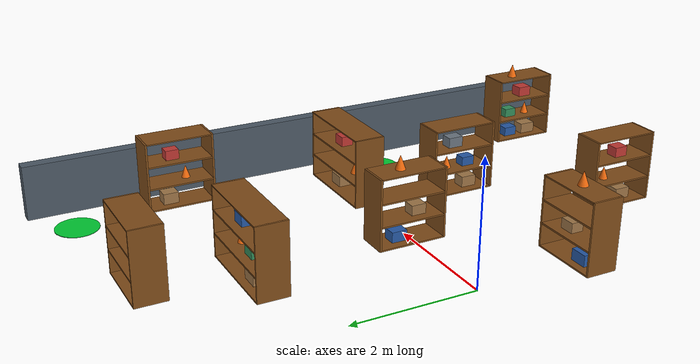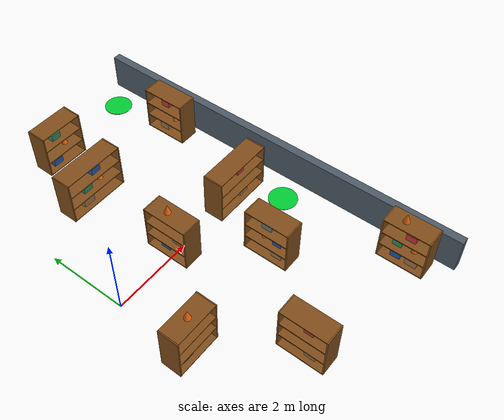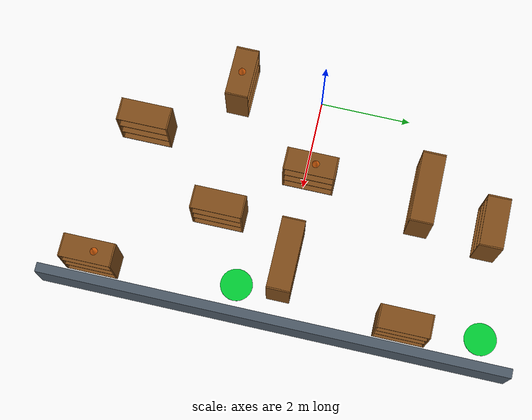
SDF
<sdf version="1.8">
 <world name="large_warehouse">
  <model name="ground_plane">
   <static>true</static>
   <link name="link">
    <collision name="collision">
     <geometry><plane><normal>0 0 1</normal><size>25 25</size></plane></geometry>
    </collision>
   </link>
  </model>
  <model name="wall_east">
   <static>true</static>
   <pose>5.1757 0.0 0.45 0 0 0</pose>
   <link name="link">
    <collision name="col"><geometry><box><size>0.2 10.0 0.9</size></box></geometry></collision>
    <visual name="vis">
     <geometry><box><size>0.2 10.0 0.9</size></box></geometry>
     <material><ambient>0.3 0.35 0.4 1</ambient><diffuse>0.3 0.35 0.4 1</diffuse></material>
    </visual>
   </link>
  </model>
  <model name="destination_marker_1">
   <static>true</static>
   <pose>4.4586 4.3795 0.01 0 0 0</pose>
   <link name="link">
    <visual name="visual">
     <geometry><cylinder><radius>0.35</radius><length>0.01</length></cylinder></geometry>
     <material><ambient>0.0 0.8 0.2 1</ambient><diffuse>0.0 0.8 0.2 1</diffuse></material>
    </visual>
   </link>
  </model>
  <model name="destination_marker_2">
   <static>true</static>
   <pose>4.4590 -0.9218 0.03 0 0 0</pose>
   <link name="link">
    <visual name="visual">
     <geometry><cylinder><radius>0.35</radius><length>0.01</length></cylinder></geometry>
     <material><ambient>0.0 0.8 0.2 1</ambient><diffuse>0.0 0.8 0.2 1</diffuse></material>
    </visual>
   </link>
  </model>
  <model name="shelf_2">
   <static>true</static>
   <pose>1.7745 2.6018 0.03 0 0 1.5697</pose>
   <link name="link">
    <collision name="col_left">
     <pose>0 0.765 0.575 0 0 0</pose>
     <geometry><box><size>0.50 0.032 1.15</size></box></geometry>
    </collision>
    <visual name="vis_left">
     <pose>0 0.765 0.575 0 0 0</pose>
     <geometry><box><size>0.50 0.032 1.15</size></box></geometry>
     <material><ambient>0.5 0.3 0.1 1</ambient><diffuse>0.5 0.3 0.1 1</diffuse></material>
    </visual>
    <collision name="col_right">
     <pose>0 -0.765 0.575 0 0 0</pose>
     <geometry><box><size>0.50 0.032 1.15</size></box></geometry>
    </collision>
    <visual name="vis_right">
     <pose>0 -0.765 0.575 0 0 0</pose>
     <geometry><box><size>0.50 0.032 1.15</size></box></geometry>
     <material><ambient>0.5 0.3 0.1 1</ambient><diffuse>0.5 0.3 0.1 1</diffuse></material>
    </visual>
    <collision name="col_lower">
     <pose>0 0 0.0125 0 0 0</pose>
     <geometry><box><size>0.50 1.51 0.025</size></box></geometry>
    </collision>
    <visual name="vis_lower">
     <pose>0 0 0.0125 0 0 0</pose>
     <geometry><box><size>0.50 1.51 0.025</size></box></geometry>
     <material><ambient>0.5 0.3 0.1 1</ambient><diffuse>0.5 0.3 0.1 1</diffuse></material>
    </visual>
    <collision name="col_shelf_1">
     <pose>0 0 0.385 0 0 0</pose>
     <geometry><box><size>0.50 1.51 0.025</size></box></geometry>
    </collision>
    <visual name="vis_shelf_1">
     <pose>0 0 0.385 0 0 0</pose>
     <geometry><box><size>0.50 1.51 0.025</size></box></geometry>
     <material><ambient>0.5 0.3 0.1 1</ambient><diffuse>0.5 0.3 0.1 1</diffuse></material>
    </visual>
    <collision name="col_shelf_2">
     <pose>0 0 0.755 0 0 0</pose>
     <geometry><box><size>0.50 1.51 0.025</size></box></geometry>
    </collision>
    <visual name="vis_shelf_2">
     <pose>0 0 0.755 0 0 0</pose>
     <geometry><box><size>0.50 1.51 0.025</size></box></geometry>
     <material><ambient>0.5 0.3 0.1 1</ambient><diffuse>0.5 0.3 0.1 1</diffuse></material>
    </visual>
    <collision name="col_upper">
     <pose>0 0 1.140 0 0 0</pose>
     <geometry><box><size>0.50 1.51 0.020</size></box></geometry>
    </collision>
    <visual name="vis_upper">
     <pose>0 0 1.140 0 0 0</pose>
     <geometry><box><size>0.50 1.51 0.020</size></box></geometry>
     <material><ambient>0.5 0.3 0.1 1</ambient><diffuse>0.5 0.3 0.1 1</diffuse></material>
    </visual>
    <collision name="col_b1">
     <pose>0 0.2 0.125 0 0 0</pose>
     <geometry><box><size>0.24 0.3 0.2</size></box></geometry>
    </collision>
    <visual name="vis_b1">
     <pose>0 0.2 0.125 0 0 0</pose>
     <geometry><box><size>0.24 0.3 0.2</size></box></geometry>
     <material><ambient>0.62 0.46 0.28 1</ambient><diffuse>0.62 0.46 0.28 1</diffuse></material>
    </visual>
    <collision name="col_c1">
     <pose>0 -0.3 0.4975 0 0 0</pose>
     <geometry><cone><radius>0.07</radius><length>0.2</length></cone></geometry>
    </collision>
    <visual name="vis_c1">
     <pose>0 -0.3 0.4975 0 0 0</pose>
     <geometry><cone><radius>0.07</radius><length>0.2</length></cone></geometry>
     <material><ambient>0.95 0.42 0.05 1</ambient><diffuse>0.95 0.42 0.05 1</diffuse></material>
    </visual>
    <collision name="col_b2">
     <pose>0 0.15 0.4775 0 0 0</pose>
     <geometry><box><size>0.2 0.24 0.16</size></box></geometry>
    </collision>
    <visual name="vis_b2">
     <pose>0 0.15 0.4775 0 0 0</pose>
     <geometry><box><size>0.2 0.24 0.16</size></box></geometry>
     <material><ambient>0.2 0.55 0.35 1</ambient><diffuse>0.2 0.55 0.35 1</diffuse></material>
    </visual>
    <collision name="col_b3">
     <pose>0 -0.15 0.8525 0 0 0</pose>
     <geometry><box><size>0.22 0.25 0.17</size></box></geometry>
    </collision>
    <visual name="vis_b3">
     <pose>0 -0.15 0.8525 0 0 0</pose>
     <geometry><box><size>0.22 0.25 0.17</size></box></geometry>
     <material><ambient>0.15 0.35 0.65 1</ambient><diffuse>0.15 0.35 0.65 1</diffuse></material>
    </visual>
   </link>
  </model>
  <model name="shelf_3">
   <static>true</static>
   <pose>3.8275 0.0136 0.03 0 0 1.5697</pose>
   <link name="link">
    <collision name="col_left">
     <pose>0 0.765 0.575 0 0 0</pose>
     <geometry><box><size>0.50 0.032 1.15</size></box></geometry>
    </collision>
    <visual name="vis_left">
     <pose>0 0.765 0.575 0 0 0</pose>
     <geometry><box><size>0.50 0.032 1.15</size></box></geometry>
     <material><ambient>0.5 0.3 0.1 1</ambient><diffuse>0.5 0.3 0.1 1</diffuse></material>
    </visual>
    <collision name="col_right">
     <pose>0 -0.765 0.575 0 0 0</pose>
     <geometry><box><size>0.50 0.032 1.15</size></box></geometry>
    </collision>
    <visual name="vis_right">
     <pose>0 -0.765 0.575 0 0 0</pose>
     <geometry><box><size>0.50 0.032 1.15</size></box></geometry>
     <material><ambient>0.5 0.3 0.1 1</ambient><diffuse>0.5 0.3 0.1 1</diffuse></material>
    </visual>
    <collision name="col_lower">
     <pose>0 0 0.0125 0 0 0</pose>
     <geometry><box><size>0.50 1.51 0.025</size></box></geometry>
    </collision>
    <visual name="vis_lower">
     <pose>0 0 0.0125 0 0 0</pose>
     <geometry><box><size>0.50 1.51 0.025</size></box></geometry>
     <material><ambient>0.5 0.3 0.1 1</ambient><diffuse>0.5 0.3 0.1 1</diffuse></material>
    </visual>
    <collision name="col_shelf_1">
     <pose>0 0 0.385 0 0 0</pose>
     <geometry><box><size>0.50 1.51 0.025</size></box></geometry>
    </collision>
    <visual name="vis_shelf_1">
     <pose>0 0 0.385 0 0 0</pose>
     <geometry><box><size>0.50 1.51 0.025</size></box></geometry>
     <material><ambient>0.5 0.3 0.1 1</ambient><diffuse>0.5 0.3 0.1 1</diffuse></material>
    </visual>
    <collision name="col_shelf_2">
     <pose>0 0 0.755 0 0 0</pose>
     <geometry><box><size>0.50 1.51 0.025</size></box></geometry>
    </collision>
    <visual name="vis_shelf_2">
     <pose>0 0 0.755 0 0 0</pose>
     <geometry><box><size>0.50 1.51 0.025</size></box></geometry>
     <material><ambient>0.5 0.3 0.1 1</ambient><diffuse>0.5 0.3 0.1 1</diffuse></material>
    </visual>
    <collision name="col_upper">
     <pose>0 0 1.140 0 0 0</pose>
     <geometry><box><size>0.50 1.51 0.020</size></box></geometry>
    </collision>
    <visual name="vis_upper">
     <pose>0 0 1.140 0 0 0</pose>
     <geometry><box><size>0.50 1.51 0.020</size></box></geometry>
     <material><ambient>0.5 0.3 0.1 1</ambient><diffuse>0.5 0.3 0.1 1</diffuse></material>
    </visual>
    <collision name="col_b1">
     <pose>0 -0.2 0.115 0 0 0</pose>
     <geometry><box><size>0.22 0.28 0.18</size></box></geometry>
    </collision>
    <visual name="vis_b1">
     <pose>0 -0.2 0.115 0 0 0</pose>
     <geometry><box><size>0.22 0.28 0.18</size></box></geometry>
     <material><ambient>0.62 0.46 0.28 1</ambient><diffuse>0.62 0.46 0.28 1</diffuse></material>
    </visual>
    <collision name="col_c1">
     <pose>0 0.3 0.5075 0 0 0</pose>
     <geometry><cone><radius>0.08</radius><length>0.22</length></cone></geometry>
    </collision>
    <visual name="vis_c1">
     <pose>0 0.3 0.5075 0 0 0</pose>
     <geometry><cone><radius>0.08</radius><length>0.22</length></cone></geometry>
     <material><ambient>0.95 0.42 0.05 1</ambient><diffuse>0.95 0.42 0.05 1</diffuse></material>
    </visual>
    <collision name="col_b2">
     <pose>0 -0.1 0.8475 0 0 0</pose>
     <geometry><box><size>0.2 0.22 0.16</size></box></geometry>
    </collision>
    <visual name="vis_b2">
     <pose>0 -0.1 0.8475 0 0 0</pose>
     <geometry><box><size>0.2 0.22 0.16</size></box></geometry>
     <material><ambient>0.75 0.22 0.2 1</ambient><diffuse>0.75 0.22 0.2 1</diffuse></material>
    </visual>
   </link>
  </model>
  <model name="shelf_4">
   <static>true</static>
   <pose>3.05 -1.610 0.03 0 0 0.0</pose>
   <link name="link">
    <collision name="col_left">
     <pose>0 0.545 0.575 0 0 0</pose>
     <geometry><box><size>0.50 0.032 1.15</size></box></geometry>
    </collision>
    <visual name="vis_left">
     <pose>0 0.545 0.575 0 0 0</pose>
     <geometry><box><size>0.50 0.032 1.15</size></box></geometry>
     <material><ambient>0.5 0.3 0.1 1</ambient><diffuse>0.5 0.3 0.1 1</diffuse></material>
    </visual>
    <collision name="col_right">
     <pose>0 -0.545 0.575 0 0 0</pose>
     <geometry><box><size>0.50 0.032 1.15</size></box></geometry>
    </collision>
    <visual name="vis_right">
     <pose>0 -0.545 0.575 0 0 0</pose>
     <geometry><box><size>0.50 0.032 1.15</size></box></geometry>
     <material><ambient>0.5 0.3 0.1 1</ambient><diffuse>0.5 0.3 0.1 1</diffuse></material>
    </visual>
    <collision name="col_lower">
     <pose>0 0 0.0125 0 0 0</pose>
     <geometry><box><size>0.50 1.07 0.025</size></box></geometry>
    </collision>
    <visual name="vis_lower">
     <pose>0 0 0.0125 0 0 0</pose>
     <geometry><box><size>0.50 1.07 0.025</size></box></geometry>
     <material><ambient>0.5 0.3 0.1 1</ambient><diffuse>0.5 0.3 0.1 1</diffuse></material>
    </visual>
    <collision name="col_shelf_1">
     <pose>0 0 0.385 0 0 0</pose>
     <geometry><box><size>0.50 1.07 0.025</size></box></geometry>
    </collision>
    <visual name="vis_shelf_1">
     <pose>0 0 0.385 0 0 0</pose>
     <geometry><box><size>0.50 1.07 0.025</size></box></geometry>
     <material><ambient>0.5 0.3 0.1 1</ambient><diffuse>0.5 0.3 0.1 1</diffuse></material>
    </visual>
    <collision name="col_shelf_2">
     <pose>0 0 0.755 0 0 0</pose>
     <geometry><box><size>0.50 1.07 0.025</size></box></geometry>
    </collision>
    <visual name="vis_shelf_2">
     <pose>0 0 0.755 0 0 0</pose>
     <geometry><box><size>0.50 1.07 0.025</size></box></geometry>
     <material><ambient>0.5 0.3 0.1 1</ambient><diffuse>0.5 0.3 0.1 1</diffuse></material>
    </visual>
    <collision name="col_upper">
     <pose>0 0 1.140 0 0 0</pose>
     <geometry><box><size>0.50 1.07 0.020</size></box></geometry>
    </collision>
    <visual name="vis_upper">
     <pose>0 0 1.140 0 0 0</pose>
     <geometry><box><size>0.50 1.07 0.020</size></box></geometry>
     <material><ambient>0.5 0.3 0.1 1</ambient><diffuse>0.5 0.3 0.1 1</diffuse></material>
    </visual>
    <collision name="col_b1">
     <pose>0 -0.2 0.115 0 0 0</pose>
     <geometry><box><size>0.22 0.26 0.18</size></box></geometry>
    </collision>
    <visual name="vis_b1">
     <pose>0 -0.2 0.115 0 0 0</pose>
     <geometry><box><size>0.22 0.26 0.18</size></box></geometry>
     <material><ambient>0.62 0.46 0.28 1</ambient><diffuse>0.62 0.46 0.28 1</diffuse></material>
    </visual>
    <collision name="col_c1">
     <pose>0 0.18 0.4975 0 0 0</pose>
     <geometry><cone><radius>0.07</radius><length>0.2</length></cone></geometry>
    </collision>
    <visual name="vis_c1">
     <pose>0 0.18 0.4975 0 0 0</pose>
     <geometry><cone><radius>0.07</radius><length>0.2</length></cone></geometry>
     <material><ambient>0.95 0.42 0.05 1</ambient><diffuse>0.95 0.42 0.05 1</diffuse></material>
    </visual>
    <collision name="col_b2">
     <pose>0 -0.18 0.4725 0 0 0</pose>
     <geometry><box><size>0.18 0.22 0.15</size></box></geometry>
    </collision>
    <visual name="vis_b2">
     <pose>0 -0.18 0.4725 0 0 0</pose>
     <geometry><box><size>0.18 0.22 0.15</size></box></geometry>
     <material><ambient>0.15 0.35 0.65 1</ambient><diffuse>0.15 0.35 0.65 1</diffuse></material>
    </visual>
    <collision name="col_b3">
     <pose>0 0.08 0.8525 0 0 0</pose>
     <geometry><box><size>0.2 0.25 0.17</size></box></geometry>
    </collision>
    <visual name="vis_b3">
     <pose>0 0.08 0.8525 0 0 0</pose>
     <geometry><box><size>0.2 0.25 0.17</size></box></geometry>
     <material><ambient>0.42 0.46 0.5 1</ambient><diffuse>0.42 0.46 0.5 1</diffuse></material>
    </visual>
   </link>
  </model>
  <model name="shelf_5">
   <static>true</static>
   <pose>4.65 -4.00 0.03 0 0 0.0</pose>
   <link name="link">
    <collision name="col_left">
     <pose>0 0.545 0.575 0 0 0</pose>
     <geometry><box><size>0.50 0.032 1.15</size></box></geometry>
    </collision>
    <visual name="vis_left">
     <pose>0 0.545 0.575 0 0 0</pose>
     <geometry><box><size>0.50 0.032 1.15</size></box></geometry>
     <material><ambient>0.5 0.3 0.1 1</ambient><diffuse>0.5 0.3 0.1 1</diffuse></material>
    </visual>
    <collision name="col_right">
     <pose>0 -0.545 0.575 0 0 0</pose>
     <geometry><box><size>0.50 0.032 1.15</size></box></geometry>
    </collision>
    <visual name="vis_right">
     <pose>0 -0.545 0.575 0 0 0</pose>
     <geometry><box><size>0.50 0.032 1.15</size></box></geometry>
     <material><ambient>0.5 0.3 0.1 1</ambient><diffuse>0.5 0.3 0.1 1</diffuse></material>
    </visual>
    <collision name="col_lower">
     <pose>0 0 0.0125 0 0 0</pose>
     <geometry><box><size>0.50 1.07 0.025</size></box></geometry>
    </collision>
    <visual name="vis_lower">
     <pose>0 0 0.0125 0 0 0</pose>
     <geometry><box><size>0.50 1.07 0.025</size></box></geometry>
     <material><ambient>0.5 0.3 0.1 1</ambient><diffuse>0.5 0.3 0.1 1</diffuse></material>
    </visual>
    <collision name="col_shelf_1">
     <pose>0 0 0.385 0 0 0</pose>
     <geometry><box><size>0.50 1.07 0.025</size></box></geometry>
    </collision>
    <visual name="vis_shelf_1">
     <pose>0 0 0.385 0 0 0</pose>
     <geometry><box><size>0.50 1.07 0.025</size></box></geometry>
     <material><ambient>0.5 0.3 0.1 1</ambient><diffuse>0.5 0.3 0.1 1</diffuse></material>
    </visual>
    <collision name="col_shelf_2">
     <pose>0 0 0.755 0 0 0</pose>
     <geometry><box><size>0.50 1.07 0.025</size></box></geometry>
    </collision>
    <visual name="vis_shelf_2">
     <pose>0 0 0.755 0 0 0</pose>
     <geometry><box><size>0.50 1.07 0.025</size></box></geometry>
     <material><ambient>0.5 0.3 0.1 1</ambient><diffuse>0.5 0.3 0.1 1</diffuse></material>
    </visual>
    <collision name="col_upper">
     <pose>0 0 1.140 0 0 0</pose>
     <geometry><box><size>0.50 1.07 0.020</size></box></geometry>
    </collision>
    <visual name="vis_upper">
     <pose>0 0 1.140 0 0 0</pose>
     <geometry><box><size>0.50 1.07 0.020</size></box></geometry>
     <material><ambient>0.5 0.3 0.1 1</ambient><diffuse>0.5 0.3 0.1 1</diffuse></material>
    </visual>
    <collision name="col_b1">
     <pose>0 -0.2 0.115 0 0 0</pose>
     <geometry><box><size>0.22 0.28 0.18</size></box></geometry>
    </collision>
    <visual name="vis_b1">
     <pose>0 -0.2 0.115 0 0 0</pose>
     <geometry><box><size>0.22 0.28 0.18</size></box></geometry>
     <material><ambient>0.62 0.46 0.28 1</ambient><diffuse>0.62 0.46 0.28 1</diffuse></material>
    </visual>
    <collision name="col_b2">
     <pose>0 0.18 0.105 0 0 0</pose>
     <geometry><box><size>0.2 0.24 0.16</size></box></geometry>
    </collision>
    <visual name="vis_b2">
     <pose>0 0.18 0.105 0 0 0</pose>
     <geometry><box><size>0.2 0.24 0.16</size></box></geometry>
     <material><ambient>0.15 0.35 0.65 1</ambient><diffuse>0.15 0.35 0.65 1</diffuse></material>
    </visual>
    <collision name="col_c1">
     <pose>0 -0.18 0.4975 0 0 0</pose>
     <geometry><cone><radius>0.07</radius><length>0.2</length></cone></geometry>
    </collision>
    <visual name="vis_c1">
     <pose>0 -0.18 0.4975 0 0 0</pose>
     <geometry><cone><radius>0.07</radius><length>0.2</length></cone></geometry>
     <material><ambient>0.95 0.42 0.05 1</ambient><diffuse>0.95 0.42 0.05 1</diffuse></material>
    </visual>
    <collision name="col_b3">
     <pose>0 0.2 0.4725 0 0 0</pose>
     <geometry><box><size>0.18 0.22 0.15</size></box></geometry>
    </collision>
    <visual name="vis_b3">
     <pose>0 0.2 0.4725 0 0 0</pose>
     <geometry><box><size>0.18 0.22 0.15</size></box></geometry>
     <material><ambient>0.2 0.55 0.35 1</ambient><diffuse>0.2 0.55 0.35 1</diffuse></material>
    </visual>
    <collision name="col_b4">
     <pose>0 -0.08 0.8525 0 0 0</pose>
     <geometry><box><size>0.22 0.24 0.17</size></box></geometry>
    </collision>
    <visual name="vis_b4">
     <pose>0 -0.08 0.8525 0 0 0</pose>
     <geometry><box><size>0.22 0.24 0.17</size></box></geometry>
     <material><ambient>0.75 0.22 0.2 1</ambient><diffuse>0.75 0.22 0.2 1</diffuse></material>
    </visual>
    <collision name="col_c2">
     <pose>0 0.15 1.26 0 0 0</pose>
     <geometry><cone><radius>0.08</radius><length>0.22</length></cone></geometry>
    </collision>
    <visual name="vis_c2">
     <pose>0 0.15 1.26 0 0 0</pose>
     <geometry><cone><radius>0.08</radius><length>0.22</length></cone></geometry>
     <material><ambient>0.95 0.42 0.05 1</ambient><diffuse>0.95 0.42 0.05 1</diffuse></material>
    </visual>
   </link>
  </model>
  <model name="shelf_6">
   <static>true</static>
   <pose>4.65 2.6745 0.03 0 0 0.0</pose>
   <link name="link">
    <collision name="col_left">
     <pose>0 0.545 0.575 0 0 0</pose>
     <geometry><box><size>0.50 0.032 1.15</size></box></geometry>
    </collision>
    <visual name="vis_left">
     <pose>0 0.545 0.575 0 0 0</pose>
     <geometry><box><size>0.50 0.032 1.15</size></box></geometry>
     <material><ambient>0.5 0.3 0.1 1</ambient><diffuse>0.5 0.3 0.1 1</diffuse></material>
    </visual>
    <collision name="col_right">
     <pose>0 -0.545 0.575 0 0 0</pose>
     <geometry><box><size>0.50 0.032 1.15</size></box></geometry>
    </collision>
    <visual name="vis_right">
     <pose>0 -0.545 0.575 0 0 0</pose>
     <geometry><box><size>0.50 0.032 1.15</size></box></geometry>
     <material><ambient>0.5 0.3 0.1 1</ambient><diffuse>0.5 0.3 0.1 1</diffuse></material>
    </visual>
    <collision name="col_lower">
     <pose>0 0 0.0125 0 0 0</pose>
     <geometry><box><size>0.50 1.07 0.025</size></box></geometry>
    </collision>
    <visual name="vis_lower">
     <pose>0 0 0.0125 0 0 0</pose>
     <geometry><box><size>0.50 1.07 0.025</size></box></geometry>
     <material><ambient>0.5 0.3 0.1 1</ambient><diffuse>0.5 0.3 0.1 1</diffuse></material>
    </visual>
    <collision name="col_shelf_1">
     <pose>0 0 0.385 0 0 0</pose>
     <geometry><box><size>0.50 1.07 0.025</size></box></geometry>
    </collision>
    <visual name="vis_shelf_1">
     <pose>0 0 0.385 0 0 0</pose>
     <geometry><box><size>0.50 1.07 0.025</size></box></geometry>
     <material><ambient>0.5 0.3 0.1 1</ambient><diffuse>0.5 0.3 0.1 1</diffuse></material>
    </visual>
    <collision name="col_shelf_2">
     <pose>0 0 0.755 0 0 0</pose>
     <geometry><box><size>0.50 1.07 0.025</size></box></geometry>
    </collision>
    <visual name="vis_shelf_2">
     <pose>0 0 0.755 0 0 0</pose>
     <geometry><box><size>0.50 1.07 0.025</size></box></geometry>
     <material><ambient>0.5 0.3 0.1 1</ambient><diffuse>0.5 0.3 0.1 1</diffuse></material>
    </visual>
    <collision name="col_upper">
     <pose>0 0 1.140 0 0 0</pose>
     <geometry><box><size>0.50 1.07 0.020</size></box></geometry>
    </collision>
    <visual name="vis_upper">
     <pose>0 0 1.140 0 0 0</pose>
     <geometry><box><size>0.50 1.07 0.020</size></box></geometry>
     <material><ambient>0.5 0.3 0.1 1</ambient><diffuse>0.5 0.3 0.1 1</diffuse></material>
    </visual>
    <collision name="col_b1">
     <pose>0 0.15 0.115 0 0 0</pose>
     <geometry><box><size>0.22 0.25 0.18</size></box></geometry>
    </collision>
    <visual name="vis_b1">
     <pose>0 0.15 0.115 0 0 0</pose>
     <geometry><box><size>0.22 0.25 0.18</size></box></geometry>
     <material><ambient>0.62 0.46 0.28 1</ambient><diffuse>0.62 0.46 0.28 1</diffuse></material>
    </visual>
    <collision name="col_c1">
     <pose>0 -0.15 0.4975 0 0 0</pose>
     <geometry><cone><radius>0.07</radius><length>0.2</length></cone></geometry>
    </collision>
    <visual name="vis_c1">
     <pose>0 -0.15 0.4975 0 0 0</pose>
     <geometry><cone><radius>0.07</radius><length>0.2</length></cone></geometry>
     <material><ambient>0.95 0.42 0.05 1</ambient><diffuse>0.95 0.42 0.05 1</diffuse></material>
    </visual>
    <collision name="col_b2">
     <pose>0 0.08 0.8475 0 0 0</pose>
     <geometry><box><size>0.18 0.22 0.16</size></box></geometry>
    </collision>
    <visual name="vis_b2">
     <pose>0 0.08 0.8475 0 0 0</pose>
     <geometry><box><size>0.18 0.22 0.16</size></box></geometry>
     <material><ambient>0.75 0.22 0.2 1</ambient><diffuse>0.75 0.22 0.2 1</diffuse></material>
    </visual>
   </link>
  </model>
  <model name="shelf_8">
   <static>true</static>
   <pose>0.1082 -1.788 0.03 0 0 -1.5766</pose>
   <link name="link">
    <collision name="col_left">
     <pose>0 0.545 0.575 0 0 0</pose>
     <geometry><box><size>0.50 0.032 1.15</size></box></geometry>
    </collision>
    <visual name="vis_left">
     <pose>0 0.545 0.575 0 0 0</pose>
     <geometry><box><size>0.50 0.032 1.15</size></box></geometry>
     <material><ambient>0.5 0.3 0.1 1</ambient><diffuse>0.5 0.3 0.1 1</diffuse></material>
    </visual>
    <collision name="col_right">
     <pose>0 -0.545 0.575 0 0 0</pose>
     <geometry><box><size>0.50 0.032 1.15</size></box></geometry>
    </collision>
    <visual name="vis_right">
     <pose>0 -0.545 0.575 0 0 0</pose>
     <geometry><box><size>0.50 0.032 1.15</size></box></geometry>
     <material><ambient>0.5 0.3 0.1 1</ambient><diffuse>0.5 0.3 0.1 1</diffuse></material>
    </visual>
    <collision name="col_lower">
     <pose>0 0 0.0125 0 0 0</pose>
     <geometry><box><size>0.50 1.07 0.025</size></box></geometry>
    </collision>
    <visual name="vis_lower">
     <pose>0 0 0.0125 0 0 0</pose>
     <geometry><box><size>0.50 1.07 0.025</size></box></geometry>
     <material><ambient>0.5 0.3 0.1 1</ambient><diffuse>0.5 0.3 0.1 1</diffuse></material>
    </visual>
    <collision name="col_shelf_1">
     <pose>0 0 0.385 0 0 0</pose>
     <geometry><box><size>0.50 1.07 0.025</size></box></geometry>
    </collision>
    <visual name="vis_shelf_1">
     <pose>0 0 0.385 0 0 0</pose>
     <geometry><box><size>0.50 1.07 0.025</size></box></geometry>
     <material><ambient>0.5 0.3 0.1 1</ambient><diffuse>0.5 0.3 0.1 1</diffuse></material>
    </visual>
    <collision name="col_shelf_2">
     <pose>0 0 0.755 0 0 0</pose>
     <geometry><box><size>0.50 1.07 0.025</size></box></geometry>
    </collision>
    <visual name="vis_shelf_2">
     <pose>0 0 0.755 0 0 0</pose>
     <geometry><box><size>0.50 1.07 0.025</size></box></geometry>
     <material><ambient>0.5 0.3 0.1 1</ambient><diffuse>0.5 0.3 0.1 1</diffuse></material>
    </visual>
    <collision name="col_upper">
     <pose>0 0 1.140 0 0 0</pose>
     <geometry><box><size>0.50 1.07 0.020</size></box></geometry>
    </collision>
    <visual name="vis_upper">
     <pose>0 0 1.140 0 0 0</pose>
     <geometry><box><size>0.50 1.07 0.020</size></box></geometry>
     <material><ambient>0.5 0.3 0.1 1</ambient><diffuse>0.5 0.3 0.1 1</diffuse></material>
    </visual>
    <collision name="col_b1">
     <pose>0 -0.18 0.115 0 0 0</pose>
     <geometry><box><size>0.24 0.28 0.18</size></box></geometry>
    </collision>
    <visual name="vis_b1">
     <pose>0 -0.18 0.115 0 0 0</pose>
     <geometry><box><size>0.24 0.28 0.18</size></box></geometry>
     <material><ambient>0.15 0.35 0.65 1</ambient><diffuse>0.15 0.35 0.65 1</diffuse></material>
    </visual>
    <collision name="col_b2">
     <pose>0 0.15 0.4775 0 0 0</pose>
     <geometry><box><size>0.2 0.24 0.16</size></box></geometry>
    </collision>
    <visual name="vis_b2">
     <pose>0 0.15 0.4775 0 0 0</pose>
     <geometry><box><size>0.2 0.24 0.16</size></box></geometry>
     <material><ambient>0.62 0.46 0.28 1</ambient><diffuse>0.62 0.46 0.28 1</diffuse></material>
    </visual>
    <collision name="col_c1">
     <pose>0 0 1.26 0 0 0</pose>
     <geometry><cone><radius>0.08</radius><length>0.22</length></cone></geometry>
    </collision>
    <visual name="vis_c1">
     <pose>0 0 1.26 0 0 0</pose>
     <geometry><cone><radius>0.08</radius><length>0.22</length></cone></geometry>
     <material><ambient>0.95 0.42 0.05 1</ambient><diffuse>0.95 0.42 0.05 1</diffuse></material>
    </visual>
   </link>
  </model>
  <model name="shelf_13">
   <static>true</static>
   <pose>1.80 0.10 0.03 0 0 0.0</pose>
   <link name="link">
    <collision name="col_left">
     <pose>0 0.545 0.575 0 0 0</pose>
     <geometry><box><size>0.50 0.032 1.15</size></box></geometry>
    </collision>
    <visual name="vis_left">
     <pose>0 0.545 0.575 0 0 0</pose>
     <geometry><box><size>0.50 0.032 1.15</size></box></geometry>
     <material><ambient>0.5 0.3 0.1 1</ambient><diffuse>0.5 0.3 0.1 1</diffuse></material>
    </visual>
    <collision name="col_right">
     <pose>0 -0.545 0.575 0 0 0</pose>
     <geometry><box><size>0.50 0.032 1.15</size></box></geometry>
    </collision>
    <visual name="vis_right">
     <pose>0 -0.545 0.575 0 0 0</pose>
     <geometry><box><size>0.50 0.032 1.15</size></box></geometry>
     <material><ambient>0.5 0.3 0.1 1</ambient><diffuse>0.5 0.3 0.1 1</diffuse></material>
    </visual>
    <collision name="col_lower">
     <pose>0 0 0.0125 0 0 0</pose>
     <geometry><box><size>0.50 1.07 0.025</size></box></geometry>
    </collision>
    <visual name="vis_lower">
     <pose>0 0 0.0125 0 0 0</pose>
     <geometry><box><size>0.50 1.07 0.025</size></box></geometry>
     <material><ambient>0.5 0.3 0.1 1</ambient><diffuse>0.5 0.3 0.1 1</diffuse></material>
    </visual>
    <collision name="col_shelf_1">
     <pose>0 0 0.385 0 0 0</pose>
     <geometry><box><size>0.50 1.07 0.025</size></box></geometry>
    </collision>
    <visual name="vis_shelf_1">
     <pose>0 0 0.385 0 0 0</pose>
     <geometry><box><size>0.50 1.07 0.025</size></box></geometry>
     <material><ambient>0.5 0.3 0.1 1</ambient><diffuse>0.5 0.3 0.1 1</diffuse></material>
    </visual>
    <collision name="col_shelf_2">
     <pose>0 0 0.755 0 0 0</pose>
     <geometry><box><size>0.50 1.07 0.025</size></box></geometry>
    </collision>
    <visual name="vis_shelf_2">
     <pose>0 0 0.755 0 0 0</pose>
     <geometry><box><size>0.50 1.07 0.025</size></box></geometry>
     <material><ambient>0.5 0.3 0.1 1</ambient><diffuse>0.5 0.3 0.1 1</diffuse></material>
    </visual>
    <collision name="col_upper">
     <pose>0 0 1.140 0 0 0</pose>
     <geometry><box><size>0.50 1.07 0.020</size></box></geometry>
    </collision>
    <visual name="vis_upper">
     <pose>0 0 1.140 0 0 0</pose>
     <geometry><box><size>0.50 1.07 0.020</size></box></geometry>
     <material><ambient>0.5 0.3 0.1 1</ambient><diffuse>0.5 0.3 0.1 1</diffuse></material>
    </visual>
    <collision name="col_b1">
     <pose>0 0.15 0.11 0 0 0</pose>
     <geometry><box><size>0.22 0.25 0.17</size></box></geometry>
    </collision>
    <visual name="vis_b1">
     <pose>0 0.15 0.11 0 0 0</pose>
     <geometry><box><size>0.22 0.25 0.17</size></box></geometry>
     <material><ambient>0.15 0.35 0.65 1</ambient><diffuse>0.15 0.35 0.65 1</diffuse></material>
    </visual>
    <collision name="col_b2">
     <pose>0 -0.18 0.4775 0 0 0</pose>
     <geometry><box><size>0.2 0.24 0.16</size></box></geometry>
    </collision>
    <visual name="vis_b2">
     <pose>0 -0.18 0.4775 0 0 0</pose>
     <geometry><box><size>0.2 0.24 0.16</size></box></geometry>
     <material><ambient>0.62 0.46 0.28 1</ambient><diffuse>0.62 0.46 0.28 1</diffuse></material>
    </visual>
    <collision name="col_c1">
     <pose>0 0.1 1.26 0 0 0</pose>
     <geometry><cone><radius>0.08</radius><length>0.22</length></cone></geometry>
    </collision>
    <visual name="vis_c1">
     <pose>0 0.1 1.26 0 0 0</pose>
     <geometry><cone><radius>0.08</radius><length>0.22</length></cone></geometry>
     <material><ambient>0.95 0.42 0.05 1</ambient><diffuse>0.95 0.42 0.05 1</diffuse></material>
    </visual>
   </link>
  </model>
  <model name="shelf_14">
   <static>true</static>
   <pose>1.50 -3.60 0.03 0 0 0.0</pose>
   <link name="link">
    <collision name="col_left">
     <pose>0 0.545 0.575 0 0 0</pose>
     <geometry><box><size>0.50 0.032 1.15</size></box></geometry>
    </collision>
    <visual name="vis_left">
     <pose>0 0.545 0.575 0 0 0</pose>
     <geometry><box><size>0.50 0.032 1.15</size></box></geometry>
     <material><ambient>0.5 0.3 0.1 1</ambient><diffuse>0.5 0.3 0.1 1</diffuse></material>
    </visual>
    <collision name="col_right">
     <pose>0 -0.545 0.575 0 0 0</pose>
     <geometry><box><size>0.50 0.032 1.15</size></box></geometry>
    </collision>
    <visual name="vis_right">
     <pose>0 -0.545 0.575 0 0 0</pose>
     <geometry><box><size>0.50 0.032 1.15</size></box></geometry>
     <material><ambient>0.5 0.3 0.1 1</ambient><diffuse>0.5 0.3 0.1 1</diffuse></material>
    </visual>
    <collision name="col_lower">
     <pose>0 0 0.0125 0 0 0</pose>
     <geometry><box><size>0.50 1.07 0.025</size></box></geometry>
    </collision>
    <visual name="vis_lower">
     <pose>0 0 0.0125 0 0 0</pose>
     <geometry><box><size>0.50 1.07 0.025</size></box></geometry>
     <material><ambient>0.5 0.3 0.1 1</ambient><diffuse>0.5 0.3 0.1 1</diffuse></material>
    </visual>
    <collision name="col_shelf_1">
     <pose>0 0 0.385 0 0 0</pose>
     <geometry><box><size>0.50 1.07 0.025</size></box></geometry>
    </collision>
    <visual name="vis_shelf_1">
     <pose>0 0 0.385 0 0 0</pose>
     <geometry><box><size>0.50 1.07 0.025</size></box></geometry>
     <material><ambient>0.5 0.3 0.1 1</ambient><diffuse>0.5 0.3 0.1 1</diffuse></material>
    </visual>
    <collision name="col_shelf_2">
     <pose>0 0 0.755 0 0 0</pose>
     <geometry><box><size>0.50 1.07 0.025</size></box></geometry>
    </collision>
    <visual name="vis_shelf_2">
     <pose>0 0 0.755 0 0 0</pose>
     <geometry><box><size>0.50 1.07 0.025</size></box></geometry>
     <material><ambient>0.5 0.3 0.1 1</ambient><diffuse>0.5 0.3 0.1 1</diffuse></material>
    </visual>
    <collision name="col_upper">
     <pose>0 0 1.140 0 0 0</pose>
     <geometry><box><size>0.50 1.07 0.020</size></box></geometry>
    </collision>
    <visual name="vis_upper">
     <pose>0 0 1.140 0 0 0</pose>
     <geometry><box><size>0.50 1.07 0.020</size></box></geometry>
     <material><ambient>0.5 0.3 0.1 1</ambient><diffuse>0.5 0.3 0.1 1</diffuse></material>
    </visual>
    <collision name="col_b1">
     <pose>0 -0.15 0.115 0 0 0</pose>
     <geometry><box><size>0.24 0.26 0.18</size></box></geometry>
    </collision>
    <visual name="vis_b1">
     <pose>0 -0.15 0.115 0 0 0</pose>
     <geometry><box><size>0.24 0.26 0.18</size></box></geometry>
     <material><ambient>0.62 0.46 0.28 1</ambient><diffuse>0.62 0.46 0.28 1</diffuse></material>
    </visual>
    <collision name="col_c1">
     <pose>0 0.18 0.4975 0 0 0</pose>
     <geometry><cone><radius>0.07</radius><length>0.2</length></cone></geometry>
    </collision>
    <visual name="vis_c1">
     <pose>0 0.18 0.4975 0 0 0</pose>
     <geometry><cone><radius>0.07</radius><length>0.2</length></cone></geometry>
     <material><ambient>0.95 0.42 0.05 1</ambient><diffuse>0.95 0.42 0.05 1</diffuse></material>
    </visual>
    <collision name="col_b2">
     <pose>0 -0.05 0.8475 0 0 0</pose>
     <geometry><box><size>0.2 0.22 0.16</size></box></geometry>
    </collision>
    <visual name="vis_b2">
     <pose>0 -0.05 0.8475 0 0 0</pose>
     <geometry><box><size>0.2 0.22 0.16</size></box></geometry>
     <material><ambient>0.75 0.22 0.2 1</ambient><diffuse>0.75 0.22 0.2 1</diffuse></material>
    </visual>
   </link>
  </model>
  <model name="shelf_15">
   <static>true</static>
   <pose>2.20 4.10 0.03 0 0 1.57</pose>
   <link name="link">
    <collision name="col_left">
     <pose>0 0.545 0.575 0 0 0</pose>
     <geometry><box><size>0.50 0.032 1.15</size></box></geometry>
    </collision>
    <visual name="vis_left">
     <pose>0 0.545 0.575 0 0 0</pose>
     <geometry><box><size>0.50 0.032 1.15</size></box></geometry>
     <material><ambient>0.5 0.3 0.1 1</ambient><diffuse>0.5 0.3 0.1 1</diffuse></material>
    </visual>
    <collision name="col_right">
     <pose>0 -0.545 0.575 0 0 0</pose>
     <geometry><box><size>0.50 0.032 1.15</size></box></geometry>
    </collision>
    <visual name="vis_right">
     <pose>0 -0.545 0.575 0 0 0</pose>
     <geometry><box><size>0.50 0.032 1.15</size></box></geometry>
     <material><ambient>0.5 0.3 0.1 1</ambient><diffuse>0.5 0.3 0.1 1</diffuse></material>
    </visual>
    <collision name="col_lower">
     <pose>0 0 0.0125 0 0 0</pose>
     <geometry><box><size>0.50 1.07 0.025</size></box></geometry>
    </collision>
    <visual name="vis_lower">
     <pose>0 0 0.0125 0 0 0</pose>
     <geometry><box><size>0.50 1.07 0.025</size></box></geometry>
     <material><ambient>0.5 0.3 0.1 1</ambient><diffuse>0.5 0.3 0.1 1</diffuse></material>
    </visual>
    <collision name="col_shelf_1">
     <pose>0 0 0.385 0 0 0</pose>
     <geometry><box><size>0.50 1.07 0.025</size></box></geometry>
    </collision>
    <visual name="vis_shelf_1">
     <pose>0 0 0.385 0 0 0</pose>
     <geometry><box><size>0.50 1.07 0.025</size></box></geometry>
     <material><ambient>0.5 0.3 0.1 1</ambient><diffuse>0.5 0.3 0.1 1</diffuse></material>
    </visual>
    <collision name="col_shelf_2">
     <pose>0 0 0.755 0 0 0</pose>
     <geometry><box><size>0.50 1.07 0.025</size></box></geometry>
    </collision>
    <visual name="vis_shelf_2">
     <pose>0 0 0.755 0 0 0</pose>
     <geometry><box><size>0.50 1.07 0.025</size></box></geometry>
     <material><ambient>0.5 0.3 0.1 1</ambient><diffuse>0.5 0.3 0.1 1</diffuse></material>
    </visual>
    <collision name="col_upper">
     <pose>0 0 1.140 0 0 0</pose>
     <geometry><box><size>0.50 1.07 0.020</size></box></geometry>
    </collision>
    <visual name="vis_upper">
     <pose>0 0 1.140 0 0 0</pose>
     <geometry><box><size>0.50 1.07 0.020</size></box></geometry>
     <material><ambient>0.5 0.3 0.1 1</ambient><diffuse>0.5 0.3 0.1 1</diffuse></material>
    </visual>
    <collision name="col_b1">
     <pose>0 0.18 0.11 0 0 0</pose>
     <geometry><box><size>0.22 0.26 0.17</size></box></geometry>
    </collision>
    <visual name="vis_b1">
     <pose>0 0.18 0.11 0 0 0</pose>
     <geometry><box><size>0.22 0.26 0.17</size></box></geometry>
     <material><ambient>0.15 0.35 0.65 1</ambient><diffuse>0.15 0.35 0.65 1</diffuse></material>
    </visual>
    <collision name="col_c1">
     <pose>0 -0.18 0.4975 0 0 0</pose>
     <geometry><cone><radius>0.07</radius><length>0.2</length></cone></geometry>
    </collision>
    <visual name="vis_c1">
     <pose>0 -0.18 0.4975 0 0 0</pose>
     <geometry><cone><radius>0.07</radius><length>0.2</length></cone></geometry>
     <material><ambient>0.95 0.42 0.05 1</ambient><diffuse>0.95 0.42 0.05 1</diffuse></material>
    </visual>
    <collision name="col_b2">
     <pose>0 0.08 0.8525 0 0 0</pose>
     <geometry><box><size>0.2 0.24 0.17</size></box></geometry>
    </collision>
    <visual name="vis_b2">
     <pose>0 0.08 0.8525 0 0 0</pose>
     <geometry><box><size>0.2 0.24 0.17</size></box></geometry>
     <material><ambient>0.2 0.55 0.35 1</ambient><diffuse>0.2 0.55 0.35 1</diffuse></material>
    </visual>
   </link>
  </model>
 </world>
</sdf>
